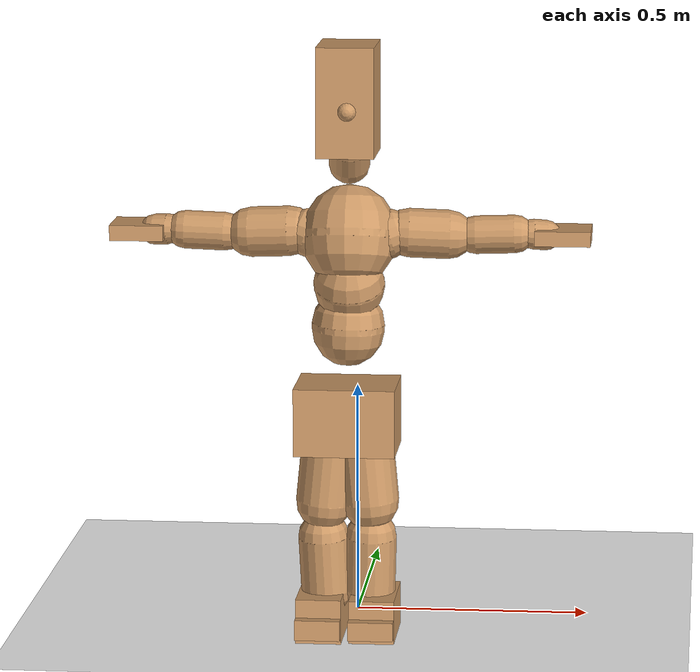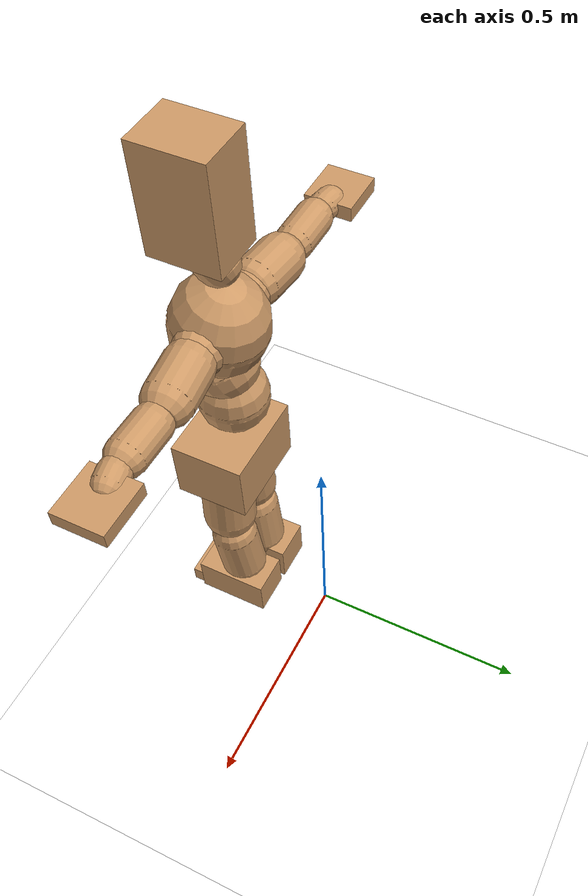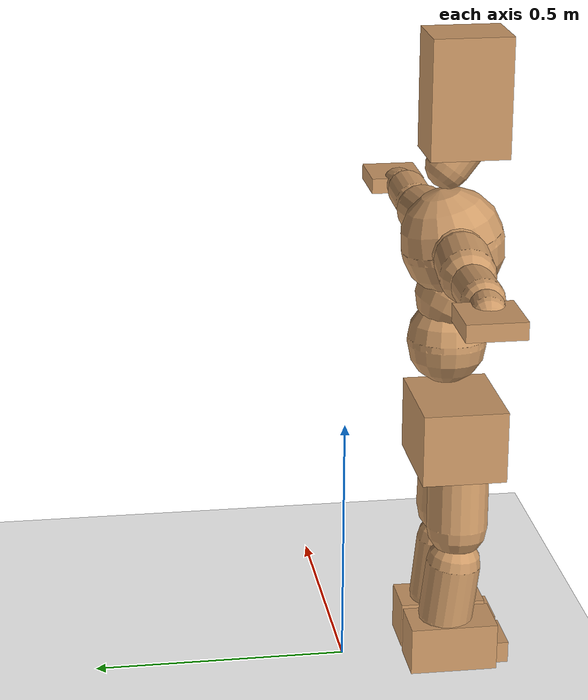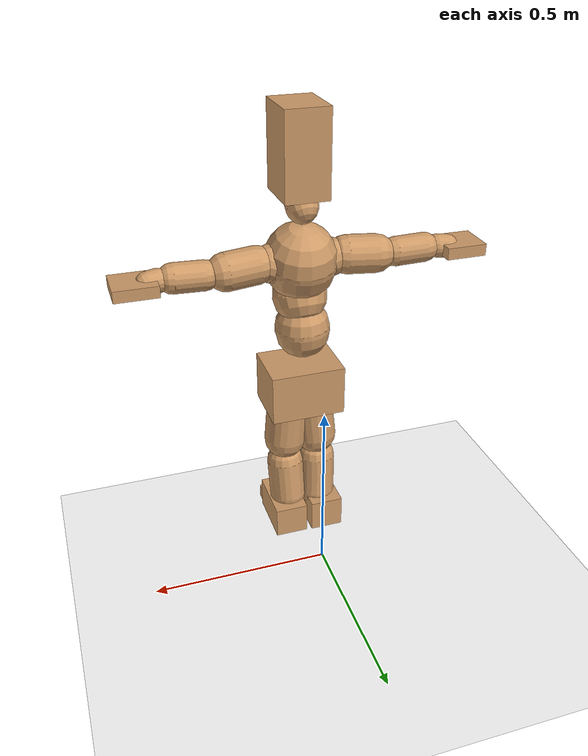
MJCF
<mujoco model="humanoid">
  <option integrator="implicitfast" />

  <visual>
    <global offwidth="1280" offheight="960" />
    <headlight active="1" ambient="0.34 0.34 0.34" diffuse="0.5 0.5 0.5" />
  </visual>

  <default>
    <joint damping="2" stiffness="2" armature="0.01" limited="true" solimplimit="0 .99 .01" />
    <geom condim="1" friction="0.7 0.005 0.0001" solimp=".99 .99 .003" solref="0.015 1" margin="0.001" rgba="0.8 0.6 .4 1" />
    <default class="smplcontact">
      <geom condim="3" friction="1. 0.005 0.0001" solref="0.015 1" solimp="0.98 0.98 0.001" priority="1" />
    </default>
    <default class="stiff_medium">
      <joint stiffness="10" />
    </default>
    <default class="stiff_medium_higher">
      <joint stiffness="50" />
    </default>
    <default class="stiff_high">
      <joint stiffness="100" />
    </default>
  </default>

  <asset>
    <texture type="skybox" builtin="gradient" rgb1="0.99 0.99 0.99" rgb2="0.608 0.828 0.892" width="100" />
    <texture builtin="flat" height="1278" mark="cross" markrgb="1 1 1" name="texgeom" random="0.01" rgb1="0.8 0.6 0.4" rgb2="0.8 0.6 0.4" type="cube" width="127" />
    <texture name="texplane" type="2d" builtin="checker" markrgb="1 1 1" rgb1="0.756 0.772 0.76" rgb2="0.6 0.6 0.6" width="100" height="100" />
    <material name="MatPlane" reflectance="0.5" texture="texplane" texrepeat="1 1" texuniform="true" />
    <material name="geom" texture="texgeom" texuniform="true" />
  </asset>

  <worldbody>
    <light name="tracking_light" pos="0 0 7" dir="0 0 -1" directional="true" cutoff="100" exponent="1" diffuse="1 1 1" specular="0.1 0.1 0.1" mode="trackcom" />
    <camera name="back" pos="0 3 2.4" xyaxes="-1 0 0 0 -1 2" mode="trackcom" />
    <camera name="side" pos="-3 0 2.4" xyaxes="0 -1 0 1 0 2" mode="trackcom" />
    <camera name="front_side" pos="-2.8 -2.8 0.8" xyaxes="0.5 -0.5 0 0.1 0.1 1" mode="trackcom" />
    <geom condim="3" name="floor" pos="0 0 0" rgba="1 1 1 1" size="100 100 .2" type="plane" material="MatPlane" />
    <body name="Pelvis" pos="-0.0018 -0.2233 0.49225" euler="90 0 0">
      <site name="Pelvis" size="0.01" />
      <freejoint name="Pelvis" />
      <geom type="box" pos="-0.0000 -0.0121 -0.0055" size="0.1069 0.0722 0.083" quat="1.0000 0.0000 0.0000 0.0000" density="3165.830099" name="Pelvis" />
      <body name="L_Hip" pos="0.03475 -0.0457 -0.0034">
        <joint name="L_Hip_x" type="hinge" pos="0 0 0" axis="1 0 0" stiffness="3.3281267346938783" range="-160.0 22.92" class="stiff_medium" damping="3.7390012674465325" armature="0.001866933509102771"/>
        <joint name="L_Hip_y" type="hinge" pos="0 0 0" axis="0 1 0" stiffness="3.37791" range="-70.0 70.0" class="stiff_medium" damping="4.005630916019097" armature="0.004750001934737158"/>
        <joint name="L_Hip_z" type="hinge" pos="0 0 0" axis="0 0 1" stiffness="3.3736477551020405" range="-28.65 90.0" class="stiff_medium" damping="2.5063841398267126" armature="0.0018620679787552054"/>
        <geom type="capsule" density="2040.816327" fromto="0.00345 -0.0375 -0.00045 0.0137 -0.1501 -0.0018" size="0.0615" name="L_Hip" />
        <body name="L_Knee" pos="0.01715 -0.1876 -0.00225">
          <joint name="L_Knee_x" type="hinge" pos="0 0 0" axis="1 0 0" range="-5.16 171.89" damping="2.2341138163124685" armature="0.0021582150618351214" stiffness="0.7227130408163265"/>
          <joint name="L_Knee_y" type="hinge" pos="0 0 0" axis="0 1 0" range="-4.58 6.88" damping="3.459125898584501" armature="0.005422024016158547" stiffness="0.6896382205818496"/>
          <joint name="L_Knee_z" type="hinge" pos="0 0 0" axis="0 0 1" range="-6.88 4.58" damping="2.2483389527020115" armature="0.002131189565119333" stiffness="0.7412274770408163"/>
          <geom type="capsule" density="1234.567901" fromto="-0.00135 -0.0398 -0.00435 -0.00545 -0.1592 -0.0175" size="0.0541" name="L_Knee" />
          <body name="L_Ankle" pos="-0.0068 -0.199 -0.02185">
            <joint name="L_Ankle_x" type="hinge" pos="0 0 0" axis="1 0 0" range="-45.84 45.84" class="stiff_medium" damping="3.0200432285450702" armature="0.005067033945711627" stiffness="5.0"/>
            <joint name="L_Ankle_y" type="hinge" pos="0 0 0" axis="0 1 0" range="-74.48 22.92" class="stiff_medium" damping="1.5371232923821343" armature="0.005250551146630428" stiffness="5.0"/>
            <joint name="L_Ankle_z" type="hinge" pos="0 0 0" axis="0 0 1" range="-4.58 4.58" class="stiff_medium" damping="3.407863702828061" armature="0.006451963898362769" stiffness="5.0"/>
            <geom type="box" pos="0.01165 -0.01195 0.0121" size="0.0483 0.0464 0.085" quat="1.0000 0.0000 0.0000 0.0000" density="449.071558" name="L_Ankle" class="smplcontact" />
            <body name="L_Toe" pos="0.0132 -0.0279 0.05965">
              <joint name="L_Toe_x" type="hinge" pos="0 0 0" axis="1 0 0" range="-91.67 22.92" armature="0.007148590664291485" damping="1.1957082139294257" stiffness="1.0"/>
              <joint name="L_Toe_y" type="hinge" pos="0 0 0" axis="0 1 0" range="-4.58 4.58" armature="0.007990951927082678" damping="1.2641955487251706" stiffness="1.0"/>
              <joint name="L_Toe_z" type="hinge" pos="0 0 0" axis="0 0 1" range="-4.58 4.58" armature="0.009694161060559443" damping="1.3924195531921721" stiffness="1.0"/>
              <geom type="box" pos="-0.0015 0.00275 0.0124" size="0.0478 0.02 0.0496" quat="1.0000 0.0000 0.0000 0.0000" density="423.206892" name="L_Toe" class="smplcontact" />
            </body>
          </body>
        </body>
      </body>
      <body name="R_Hip" pos="-0.03385 -0.04525 -0.00215">
        <joint name="R_Hip_x" type="hinge" pos="0 0 0" axis="1 0 0" stiffness="3.3281267346938783" range="-160.0 22.92" class="stiff_medium" damping="3.7390012674465325" armature="0.001866933509102771"/>
        <joint name="R_Hip_y" type="hinge" pos="0 0 0" axis="0 1 0" stiffness="3.37791" range="-70.0 70.0" class="stiff_medium" damping="4.005630916019097" armature="0.004750001934737158"/>
        <joint name="R_Hip_z" type="hinge" pos="0 0 0" axis="0 0 1" stiffness="3.3736477551020405" range="-90.0 28.65" class="stiff_medium" damping="2.5063841398267126" armature="0.0018620679787552054"/>
        <geom type="capsule" density="2040.816327" fromto="-0.00385 -0.03825 -0.0009 -0.0153 -0.15305 -0.00355" size="0.0606" name="R_Hip" />
        <body name="R_Knee" pos="-0.01915 -0.1913 -0.00445">
          <joint name="R_Knee_x" type="hinge" pos="0 0 0" axis="1 0 0" range="-5.16 171.89" damping="2.2341138163124685" armature="0.0021582150618351214" stiffness="0.7227130408163265"/>
          <joint name="R_Knee_y" type="hinge" pos="0 0 0" axis="0 1 0" range="-6.88 4.58" damping="3.459125898584501" armature="0.005422024016158547" stiffness="0.6896382205818496"/>
          <joint name="R_Knee_z" type="hinge" pos="0 0 0" axis="0 0 1" range="-4.58 6.88" damping="2.2483389527020115" armature="0.002131189565119333" stiffness="0.7412274770408163"/>
          <geom type="capsule" density="1234.567901" fromto="0.0016 -0.03985 -0.00425 0.0063 -0.15935 -0.0169" size="0.0541" name="R_Knee" />
          <body name="R_Ankle" pos="0.0079 -0.1992 -0.02115">
            <joint name="R_Ankle_x" type="hinge" pos="0 0 0" axis="1 0 0" range="-45.84 45.84" class="stiff_medium" damping="3.0200432285450702" armature="0.005067033945711627" stiffness="5.0"/>
            <joint name="R_Ankle_y" type="hinge" pos="0 0 0" axis="0 1 0" range="-22.92 74.48" class="stiff_medium" damping="1.5371232923821343" armature="0.005250551146630428" stiffness="5.0"/>
            <joint name="R_Ankle_z" type="hinge" pos="0 0 0" axis="0 0 1" range="-4.58 4.58" class="stiff_medium" damping="3.407863702828061" armature="0.006451963898362769" stiffness="5.0"/>
            <geom type="box" pos="-0.0106 -0.0087 0.0128" size="0.0483 0.0478 0.0865" quat="1.0000 0.0000 0.0000 0.0000" density="434.700981" name="R_Ankle" class="smplcontact" />
            <body name="R_Toe" pos="-0.0127 -0.02405 0.06165">
              <joint name="R_Toe_x" type="hinge" pos="0 0 0" axis="1 0 0" range="-91.67 22.92" armature="0.007148590664291485" damping="1.1957082139294257" stiffness="1.0"/>
              <joint name="R_Toe_y" type="hinge" pos="0 0 0" axis="0 1 0" range="-4.58 4.58" armature="0.007990951927082678" damping="1.2641955487251706" stiffness="1.0"/>
              <joint name="R_Toe_z" type="hinge" pos="0 0 0" axis="0 0 1" range="-4.58 4.58" armature="0.009694161060559443" damping="1.3924195531921721" stiffness="1.0"/>
              <geom type="box" pos="0.0021 0.00225 0.01135" size="0.0479 0.0216 0.0493" quat="1.0000 0.0000 0.0000 0.0000" density="407.384095" name="R_Toe" class="smplcontact" />
            </body>
          </body>
        </body>
      </body>
      <body name="Torso" pos="-0.0025 0.109 -0.0267">
        <joint name="Torso_x" type="hinge" pos="0 0 0" axis="1 0 0" range="-25.78 57.3" class="stiff_medium" damping="12.833128643120645" armature="0.00838986775572671" stiffness="8.724237142857143"/>
        <joint name="Torso_y" type="hinge" pos="0 0 0" axis="0 1 0" range="-57.3 57.3" class="stiff_high" damping="9.641007877053582" armature="0.0026152511802961754" stiffness="88.85287346938776"/>
        <joint name="Torso_z" type="hinge" pos="0 0 0" axis="0 0 1" range="-34.38 34.38" class="stiff_high" damping="15.256621848072815" armature="0.006404603814601965" stiffness="90.85827826086955"/>
        <geom type="capsule" density="2040.816327" fromto="0.0025 0.0608 0.0005 0.003 0.0743 0.0006" size="0.0769" name="Torso" />
        <body name="Spine" pos="0.0055 0.1352 0.0011">
          <joint name="Spine_x" type="hinge" pos="0 0 0" axis="1 0 0" stiffness="8.524132708333333" range="-25.78 57.3" class="stiff_medium" damping="12.593328186154581" armature="0.008268911088118527"/>
          <joint name="Spine_y" type="hinge" pos="0 0 0" axis="0 1 0" stiffness="8.372724772727274" range="-57.3 57.3" class="stiff_high" damping="3.70583596472787" armature="0.0025628641978587448"/>
          <joint name="Spine_z" type="hinge" pos="0 0 0" axis="0 0 1" stiffness="17.091765581395343" range="-34.38 34.38" class="stiff_high" damping="7.912330782724084" armature="0.0050873245655035084"/>
          <geom type="capsule" density="2040.816327" fromto="0.0007 0.0238 0.0114 0.0008 0.0291 0.014" size="0.0755" name="Spine" />
          <body name="Chest" pos="0.0015 0.0529 0.0254">
            <joint name="Chest_x" type="hinge" pos="0 0 0" axis="1 0 0" stiffness="8.200278372093024" range="-25.78 57.3" class="stiff_medium" damping="12.319816615498862" armature="0.008226164178146733"/>
            <joint name="Chest_y" type="hinge" pos="0 0 0" axis="0 1 0" stiffness="6.66116392857143" range="-57.3 57.3" class="stiff_high" damping="3.2862373670032503" armature="0.0025331899922285133"/>
            <joint name="Chest_z" type="hinge" pos="0 0 0" axis="0 0 1" stiffness="16.64932651162791" range="-34.38 34.38" class="stiff_high" damping="7.36051426253279" armature="0.004519466278837102"/>
            <geom type="capsule" density="2040.816327" fromto="-0.0009 0.0682 -0.0173 -0.001 0.0833 -0.0212" size="0.1002" name="Chest" />
            <body name="Neck" pos="-0.0028 0.2139 -0.0429">
              <joint name="Neck_x" type="hinge" pos="0 0 0" axis="1 0 0" range="-28.65 57.3" class="stiff_medium_higher" damping="10.00000000000001" armature="0.010000000000000024" stiffness="50.0"/>
              <joint name="Neck_y" type="hinge" pos="0 0 0" axis="0 1 0" range="-40.11 40.11" class="stiff_medium_higher" damping="10.0" armature="0.010000000000000002" stiffness="50.0"/>
              <joint name="Neck_z" type="hinge" pos="0 0 0" axis="0 0 1" range="-40.11 40.11" class="stiff_medium_higher" damping="10.000000000000009" armature="0.010000000000000018" stiffness="50.0"/>
              <geom type="capsule" density="1000" fromto="0.001 0.013 0.0103 0.0041 0.052 0.0411" size="0.0436" name="Neck" />
              <body name="Head" pos="0.0052 0.065 0.0513">
                <joint name="Head_x" type="hinge" pos="0 0 0" axis="1 0 0" range="-28.65 57.3" class="stiff_medium_higher" damping="2.0000000000000004" armature="0.010000000000000005" stiffness="50.0"/>
                <joint name="Head_y" type="hinge" pos="0 0 0" axis="0 1 0" range="-40.11 40.11" class="stiff_medium_higher" damping="2.0" armature="0.01" stiffness="50.0"/>
                <joint name="Head_z" type="hinge" pos="0 0 0" axis="0 0 1" range="-40.11 40.11" class="stiff_medium_higher" damping="2.0000000000000013" armature="0.010000000000000014" stiffness="50.0"/>
                <geom type="box" pos="-0.0042 0.0876 -0.0116" size="0.0606 0.1154 0.076" quat="1.0000 0.0000 0.0000 0.0000" density="1018.069894" name="Head" />
                <geom type="capsule" name="nose" size="0.02 0.01" pos="0 0.07 0.05" quat="1 0 0 0" mass="0" contype="0" conaffinity="0" />
              </body>
            </body>
            <body name="L_Thorax" pos="0.04334 0.066935 -0.018755">
              <joint name="L_Thorax_x" type="hinge" pos="0 0 0" axis="1 0 0" range="-10.89 4.58" class="stiff_medium_higher" damping="8.434703621562797" armature="0.004456108006307129" stiffness="19.956940306122444"/>
              <joint name="L_Thorax_y" type="hinge" pos="0 0 0" axis="0 1 0" range="-28.65 17.19" class="stiff_medium_higher" damping="6.022763730189365" armature="0.002308462047497596" stiffness="19.641693367346935"/>
              <joint name="L_Thorax_z" type="hinge" pos="0 0 0" axis="0 0 1" range="-31.51 40.11" class="stiff_medium_higher" damping="6.0206596523268665" armature="0.0023064402545495094" stiffness="19.64517755102041"/>
              <geom type="capsule" density="1000" fromto="0.01001 0.003355 -0.00099 0.04004 0.01342 -0.003905" size="0.0521" name="L_Thorax" />
              <body name="L_Shoulder" pos="0.05005 0.016775 -0.004895">
                <joint name="L_Shoulder_x" type="hinge" pos="0 0 0" axis="1 0 0" range="-97.4 97.4" class="stiff_medium" damping="2.750732619270355" armature="0.005207580254125619" stiffness="4.036066215805471"/>
                <joint name="L_Shoulder_y" type="hinge" pos="0 0 0" axis="0 1 0" range="-108.86 80.21" class="stiff_medium" damping="1.8298767221096353" armature="0.00235368225666454" stiffness="3.9517852040816326"/>
                <joint name="L_Shoulder_z" type="hinge" pos="0 0 0" axis="0 0 1" range="-97.4 85.94" class="stiff_medium" damping="1.829909535734246" armature="0.0023507489222583896" stiffness="3.9568582653061224"/>
                <geom type="capsule" density="1000" fromto="0.028545 -0.00143 -0.003025 0.114235 -0.00561 -0.0121" size="0.0517" name="L_Shoulder" />
                <body name="L_Elbow" pos="0.14278 -0.00704 -0.015125">
                  <joint name="L_Elbow_x" type="hinge" pos="0 0 0" axis="1 0 0" range="-17.19 4.58" damping="2.6383809861162364" armature="0.006602890217626976" stiffness="0.8433948163265306"/>
                  <joint name="L_Elbow_y" type="hinge" pos="0 0 0" axis="0 1 0" range="-180.0 17.19" damping="1.6493311800762023" armature="0.0025828362461048147" stiffness="0.842575551020408"/>
                  <joint name="L_Elbow_z" type="hinge" pos="0 0 0" axis="0 0 1" range="-100.84 4.58" damping="1.64576925371441" armature="0.0025674453810837095" stiffness="0.8439693265306122"/>
                  <geom type="capsule" density="1000" fromto="0.02739 0.00099 -0.00011 0.10967 0.00396 -0.000495" size="0.0405" name="L_Elbow" />
                  <body name="L_Wrist" pos="0.13706 0.00495 -0.00066">
                    <joint name="L_Wrist_x" type="hinge" pos="0 0 0" axis="1 0 0" range="-180.0 22.92" armature="0.007461834395238791" damping="1.2279494204587413" stiffness="1.0103814285714288"/>
                    <joint name="L_Wrist_y" type="hinge" pos="0 0 0" axis="0 1 0" range="-17.19 17.19" armature="0.0036649156166127495" damping="0.8549575346764102" stiffness="0.9972294897959184"/>
                    <joint name="L_Wrist_z" type="hinge" pos="0 0 0" axis="0 0 1" range="-22.92 22.92" armature="0.0034414222692761517" damping="0.830679708046743" stiffness="1.002534306122449"/>
                    <geom type="capsule" density="1000" fromto="0.00924 -0.00088 -0.00165 0.03696 -0.003575 -0.0066" size="0.0318" name="L_Wrist" class="smplcontact" />
                    <body name="L_Hand" pos="0.0462 -0.00451 -0.008195">
                      <joint name="L_Hand_x" type="hinge" pos="0 0 0" axis="1 0 0" range="-17.19 17.19" armature="0.009696126030368795" damping="1.4605299472044846" stiffness="1.0999999999999999"/>
                      <joint name="L_Hand_y" type="hinge" pos="0 0 0" axis="0 1 0" range="-51.57 51.57" armature="0.006325063576496694" damping="1.1796245109479848" stiffness="1.0999999999999999"/>
                      <joint name="L_Hand_z" type="hinge" pos="0 0 0" axis="0 0 1" range="-91.67 91.67" armature="0.0054264608203164946" damping="1.092621334438253" stiffness="1.0999999999999999"/>
                      <geom type="box" pos="0.027115 0.00055 -0.00319" size="0.0585 0.0158 0.0538" quat="1.0000 0.0000 0.0000 0.0000" density="400.552564" name="L_Hand" class="smplcontact" />
                    </body>
                  </body>
                </body>
              </body>
            </body>
            <body name="R_Thorax" pos="-0.04499 0.06534 -0.02123">
              <joint name="R_Thorax_x" type="hinge" pos="0 0 0" axis="1 0 0" range="-10.89 4.58" class="stiff_medium_higher" damping="8.434703621562797" armature="0.004456108006307129" stiffness="19.956940306122444"/>
              <joint name="R_Thorax_y" type="hinge" pos="0 0 0" axis="0 1 0" range="-17.19 28.65" class="stiff_medium_higher" damping="6.022763730189365" armature="0.002308462047497596" stiffness="19.641693367346935"/>
              <joint name="R_Thorax_z" type="hinge" pos="0 0 0" axis="0 0 1" range="-40.11 31.51" class="stiff_medium_higher" damping="6.0206596523268665" armature="0.0023064402545495094" stiffness="19.64517755102041"/>
              <geom type="capsule" density="1000" fromto="-0.01056 0.003575 -0.00099 -0.04224 0.0143 -0.004015" size="0.0511" name="R_Thorax" />
              <body name="R_Shoulder" pos="-0.0528 0.01793 -0.005005">
                <joint name="R_Shoulder_x" type="hinge" pos="0 0 0" axis="1 0 0" range="-97.4 97.4" class="stiff_medium" damping="2.750732619270355" armature="0.005207580254125619" stiffness="4.036066215805471"/>
                <joint name="R_Shoulder_y" type="hinge" pos="0 0 0" axis="0 1 0" range="-80.21 108.86" class="stiff_medium" damping="1.8298767221096353" armature="0.00235368225666454" stiffness="3.9517852040816326"/>
                <joint name="R_Shoulder_z" type="hinge" pos="0 0 0" axis="0 0 1" range="-85.94 97.4" class="stiff_medium" damping="1.829909535734246" armature="0.0023507489222583896" stiffness="3.9568582653061224"/>
                <geom type="capsule" density="1000" fromto="-0.027885 -0.001485 -0.002365 -0.11165 -0.005885 -0.009405" size="0.0531" name="R_Shoulder" />
                <body name="R_Elbow" pos="-0.139535 -0.007315 -0.01177">
                  <joint name="R_Elbow_x" type="hinge" pos="0 0 0" axis="1 0 0" range="-17.19 4.58" damping="2.6383809861162364" armature="0.006602890217626976" stiffness="0.8433948163265306"/>
                  <joint name="R_Elbow_y" type="hinge" pos="0 0 0" axis="0 1 0" range="-17.19 180.0" damping="1.6493311800762023" armature="0.0025828362461048147" stiffness="0.842575551020408"/>
                  <joint name="R_Elbow_z" type="hinge" pos="0 0 0" axis="0 0 1" range="-4.58 100.84" damping="1.64576925371441" armature="0.0025674453810837095" stiffness="0.8439693265306122"/>
                  <geom type="capsule" density="1000" fromto="-0.028105 0.00088 -0.000605 -0.11231 0.00341 -0.00242" size="0.0408" name="R_Elbow" />
                  <body name="R_Wrist" pos="-0.140415 0.00429 -0.00308">
                    <joint name="R_Wrist_x" type="hinge" pos="0 0 0" axis="1 0 0" range="-180.0 22.92" armature="0.007461834395238791" damping="1.2279494204587413" stiffness="1.0103814285714288"/>
                    <joint name="R_Wrist_y" type="hinge" pos="0 0 0" axis="0 1 0" range="-17.19 17.19" armature="0.0036649156166127495" damping="0.8549575346764102" stiffness="0.9972294897959184"/>
                    <joint name="R_Wrist_z" type="hinge" pos="0 0 0" axis="0 0 1" range="-22.92 22.92" armature="0.0034414222692761517" damping="0.830679708046743" stiffness="1.002534306122449"/>
                    <geom type="capsule" density="1000" fromto="-0.009295 -0.00066 -0.001155 -0.037235 -0.002695 -0.004565" size="0.0326" name="R_Wrist" class="smplcontact" />
                    <body name="R_Hand" pos="-0.04653 -0.003355 -0.005665">
                      <joint name="R_Hand_x" type="hinge" pos="0 0 0" axis="1 0 0" range="-17.19 17.19" armature="0.009696126030368795" damping="1.4605299472044846" stiffness="1.0999999999999999"/>
                      <joint name="R_Hand_y" type="hinge" pos="0 0 0" axis="0 1 0" range="-51.57 51.57" armature="0.006325063576496694" damping="1.1796245109479848" stiffness="1.0999999999999999"/>
                      <joint name="R_Hand_z" type="hinge" pos="0 0 0" axis="0 0 1" range="-91.67 91.67" armature="0.0054264608203164946" damping="1.092621334438253" stiffness="1.0999999999999999"/>
                      <geom type="box" pos="-0.02541 -0.000495 -0.004345" size="0.0569 0.0164 0.0546" quat="1.0000 0.0000 0.0000 0.0000" density="403.679611" name="R_Hand" class="smplcontact" />
                    </body>
                  </body>
                </body>
              </body>
            </body>
          </body>
        </body>
      </body>
    </body>
  </worldbody>
  <actuator>
    <general name="L_Hip_x" joint="L_Hip_x" biastype="affine" gainprm="95.62708680036044" biasprm="-71.66280919852072 -59.9062812244898 -0.4985335023262043" ctrllimited="true" ctrlrange="-1 1" forcerange="-119.8125624489796 119.8125624489796" />
    <general name="L_Hip_y" joint="L_Hip_y" biastype="affine" gainprm="74.28412068341248" biasprm="0.0 -60.80238 -0.8011261832038195" ctrllimited="true" ctrlrange="-1 1" forcerange="-121.60476 121.60476" />
    <general name="L_Hip_z" joint="L_Hip_z" biastype="affine" gainprm="62.8763546966517" biasprm="32.51128833240271 -60.72565959183673 -0.5012768279653426" ctrllimited="true" ctrlrange="-1 1" forcerange="-121.45131918367346 121.45131918367346" />
    <general name="L_Knee_x" joint="L_Knee_x" biastype="affine" gainprm="100.49667747567948" biasprm="94.63886492809961 -65.04417367346939 -0.5585284540781171" ctrllimited="true" ctrlrange="-1 1" forcerange="-130.08834734693878 130.08834734693878" />
    <general name="L_Knee_y" joint="L_Knee_y" biastype="affine" gainprm="6.207201182643047" biasprm="1.2457733612634387 -62.06743985236647 -0.8647814746461252" ctrllimited="true" ctrlrange="-1 1" forcerange="-124.13487970473294 124.13487970473294" />
    <general name="L_Knee_z" joint="L_Knee_z" biastype="affine" gainprm="6.671538692002082" biasprm="-1.3389650079934372 -66.71047293367346 -0.5620847381755029" ctrllimited="true" ctrlrange="-1 1" forcerange="-133.42094586734692 133.42094586734692" />
    <general name="L_Ankle_x" joint="L_Ankle_x" biastype="affine" gainprm="36.002651810139035" biasprm="0.0 -45.0 -1.00668107618169" ctrllimited="true" ctrlrange="-1 1" forcerange="-90.0 90.0" />
    <general name="L_Ankle_y" joint="L_Ankle_y" biastype="affine" gainprm="38.24889055745574" biasprm="-20.24756465238622 -45.0 -1.0247488615880895" ctrllimited="true" ctrlrange="-1 1" forcerange="-90.0 90.0" />
    <general name="L_Ankle_z" joint="L_Ankle_z" biastype="affine" gainprm="3.5971235883603128" biasprm="0.0 -45.0 -1.1359545676093536" ctrllimited="true" ctrlrange="-1 1" forcerange="-90.0 90.0" />
    <general name="L_Toe_x" joint="L_Toe_x" biastype="affine" gainprm="35.99951021748544" biasprm="-21.598449493429825 -36.0 -0.4782832855717703" ctrllimited="true" ctrlrange="-1 1" forcerange="-72.0 72.0" />
    <general name="L_Toe_y" joint="L_Toe_y" biastype="affine" gainprm="2.8776988706882505" biasprm="0.0 -36.0 -0.5056782194900683" ctrllimited="true" ctrlrange="-1 1" forcerange="-72.0 72.0" />
    <general name="L_Toe_z" joint="L_Toe_z" biastype="affine" gainprm="2.8776988706882505" biasprm="0.0 -36.0 -0.5569678212768688" ctrllimited="true" ctrlrange="-1 1" forcerange="-72.0 72.0" />
    <general name="R_Hip_x" joint="R_Hip_x" biastype="affine" gainprm="95.62708680036044" biasprm="-71.66280919852072 -59.9062812244898 -0.4985335023262043" ctrllimited="true" ctrlrange="-1 1" forcerange="-119.8125624489796 119.8125624489796" />
    <general name="R_Hip_y" joint="R_Hip_y" biastype="affine" gainprm="74.28412068341248" biasprm="0.0 -60.80238 -0.8011261832038195" ctrllimited="true" ctrlrange="-1 1" forcerange="-121.60476 121.60476" />
    <general name="R_Hip_z" joint="R_Hip_z" biastype="affine" gainprm="62.8763546966517" biasprm="-32.51128833240271 -60.72565959183673 -0.5012768279653426" ctrllimited="true" ctrlrange="-1 1" forcerange="-121.45131918367346 121.45131918367346" />
    <general name="R_Knee_x" joint="R_Knee_x" biastype="affine" gainprm="100.49667747567948" biasprm="94.63886492809961 -65.04417367346939 -0.5585284540781171" ctrllimited="true" ctrlrange="-1 1" forcerange="-130.08834734693878 130.08834734693878" />
    <general name="R_Knee_y" joint="R_Knee_y" biastype="affine" gainprm="6.207201182643047" biasprm="-1.2457733612634387 -62.06743985236647 -0.8647814746461252" ctrllimited="true" ctrlrange="-1 1" forcerange="-124.13487970473294 124.13487970473294" />
    <general name="R_Knee_z" joint="R_Knee_z" biastype="affine" gainprm="6.671538692002082" biasprm="1.3389650079934372 -66.71047293367346 -0.5620847381755029" ctrllimited="true" ctrlrange="-1 1" forcerange="-133.42094586734692 133.42094586734692" />
    <general name="R_Ankle_x" joint="R_Ankle_x" biastype="affine" gainprm="36.002651810139035" biasprm="0.0 -45.0 -1.00668107618169" ctrllimited="true" ctrlrange="-1 1" forcerange="-90.0 90.0" />
    <general name="R_Ankle_y" joint="R_Ankle_y" biastype="affine" gainprm="38.24889055745574" biasprm="20.24756465238622 -45.0 -1.0247488615880895" ctrllimited="true" ctrlrange="-1 1" forcerange="-90.0 90.0" />
    <general name="R_Ankle_z" joint="R_Ankle_z" biastype="affine" gainprm="3.5971235883603128" biasprm="0.0 -45.0 -1.1359545676093536" ctrllimited="true" ctrlrange="-1 1" forcerange="-90.0 90.0" />
    <general name="R_Toe_x" joint="R_Toe_x" biastype="affine" gainprm="35.99951021748544" biasprm="-21.598449493429825 -36.0 -0.4782832855717703" ctrllimited="true" ctrlrange="-1 1" forcerange="-72.0 72.0" />
    <general name="R_Toe_y" joint="R_Toe_y" biastype="affine" gainprm="2.8776988706882505" biasprm="0.0 -36.0 -0.5056782194900683" ctrllimited="true" ctrlrange="-1 1" forcerange="-72.0 72.0" />
    <general name="R_Toe_z" joint="R_Toe_z" biastype="affine" gainprm="2.8776988706882505" biasprm="0.0 -36.0 -0.5569678212768688" ctrllimited="true" ctrlrange="-1 1" forcerange="-72.0 72.0" />
    <general name="Torso_x" joint="Torso_x" biastype="affine" gainprm="151.80377221252243" biasprm="57.593342563056154 -209.38169142857143 -3.4221676381655053" ctrllimited="true" ctrlrange="-1 1" forcerange="-314.07253714285713 314.07253714285713" />
    <general name="Torso_y" joint="Torso_y" biastype="affine" gainprm="213.26260438991383" biasprm="0.0 -213.24689632653062 -1.9282015754107165" ctrllimited="true" ctrlrange="-1 1" forcerange="-319.8703444897959 319.8703444897959" />
    <general name="Torso_z" joint="Torso_z" biastype="affine" gainprm="130.84555825179245" biasprm="0.0 -218.05986782608693 -3.051324369614563" ctrllimited="true" ctrlrange="-1 1" forcerange="-327.0898017391304 327.0898017391304" />
    <general name="Spine_x" joint="Spine_x" biastype="affine" gainprm="148.32190812518058" biasprm="56.272346462514335 -204.579185 -3.3582208496412216" ctrllimited="true" ctrlrange="-1 1" forcerange="-306.86877749999996 306.86877749999996" />
    <general name="Spine_y" joint="Spine_y" biastype="affine" gainprm="200.96019646308363" biasprm="0.0 -200.94539454545458 -1.852917982363935" ctrllimited="true" ctrlrange="-1 1" forcerange="-301.41809181818184 301.41809181818184" />
    <general name="Spine_z" joint="Spine_z" biastype="affine" gainprm="123.06977700949903" biasprm="0.0 -205.10118697674412 -2.637443594241361" ctrllimited="true" ctrlrange="-1 1" forcerange="-307.6517804651162 307.6517804651162" />
    <general name="Chest_x" joint="Chest_x" biastype="affine" gainprm="142.68676672729774" biasprm="54.13441125715483 -196.80668093023257 -3.2852844307996967" ctrllimited="true" ctrlrange="-1 1" forcerange="-295.21002139534886 295.21002139534886" />
    <general name="Chest_y" joint="Chest_y" biastype="affine" gainprm="159.87971038041" biasprm="0.0 -159.8679342857143 -1.6431186835016252" ctrllimited="true" ctrlrange="-1 1" forcerange="-239.80190142857145 239.80190142857145" />
    <general name="Chest_z" joint="Chest_z" biastype="affine" gainprm="119.88398105429127" biasprm="0.0 -199.7919181395349 -2.453504754177597" ctrllimited="true" ctrlrange="-1 1" forcerange="-299.68787720930237 299.68787720930237" />
    <general name="Neck_x" joint="Neck_x" biastype="affine" gainprm="27.00198885760427" biasprm="9.000662952534757 -36.0 -0.8000000000000009" ctrllimited="true" ctrlrange="-1 1" forcerange="-72.0 72.0" />
    <general name="Neck_y" joint="Neck_y" biastype="affine" gainprm="25.20185626709732" biasprm="0.0 -36.0 -0.8" ctrllimited="true" ctrlrange="-1 1" forcerange="-72.0 72.0" />
    <general name="Neck_z" joint="Neck_z" biastype="affine" gainprm="25.20185626709732" biasprm="0.0 -36.0 -0.8000000000000007" ctrllimited="true" ctrlrange="-1 1" forcerange="-72.0 72.0" />
    <general name="Head_x" joint="Head_x" biastype="affine" gainprm="18.001325905069514" biasprm="6.000441968356505 -24.0 -0.8000000000000003" ctrllimited="true" ctrlrange="-1 1" forcerange="-48.0 48.0" />
    <general name="Head_y" joint="Head_y" biastype="affine" gainprm="16.801237511398213" biasprm="0.0 -24.0 -0.8" ctrllimited="true" ctrlrange="-1 1" forcerange="-48.0 48.0" />
    <general name="Head_z" joint="Head_z" biastype="affine" gainprm="16.801237511398213" biasprm="0.0 -24.0 -0.8000000000000006" ctrllimited="true" ctrlrange="-1 1" forcerange="-48.0 48.0" />
    <general name="L_Thorax_x" joint="L_Thorax_x" biastype="affine" gainprm="6.466106980153143" biasprm="-2.6374360080650514 -47.89665673469387 -0.6747762897250237" ctrllimited="true" ctrlrange="-1 1" forcerange="-95.79331346938774 95.79331346938774" />
    <general name="L_Thorax_y" joint="L_Thorax_y" biastype="affine" gainprm="18.857414593762904" biasprm="-4.714353648440726 -47.140064081632644 -0.48182109841514925" ctrllimited="true" ctrlrange="-1 1" forcerange="-94.28012816326529 94.28012816326529" />
    <general name="L_Thorax_z" joint="L_Thorax_z" biastype="affine" gainprm="29.46787972505706" biasprm="3.538449673771163 -47.14842612244898 -0.4816527721861493" ctrllimited="true" ctrlrange="-1 1" forcerange="-94.29685224489796 94.29685224489796" />
    <general name="L_Shoulder_x" joint="L_Shoulder_x" biastype="affine" gainprm="32.93334506047744" biasprm="0.0 -19.373117835866264 -0.7335286984720948" ctrllimited="true" ctrlrange="-1 1" forcerange="-38.74623567173253 38.74623567173253" />
    <general name="L_Shoulder_y" joint="L_Shoulder_y" biastype="affine" gainprm="31.297133640991394" biasprm="-4.74249155770034 -18.968568979591836 -0.4879671258959028" ctrllimited="true" ctrlrange="-1 1" forcerange="-37.93713795918367 37.93713795918367" />
    <general name="L_Shoulder_z" joint="L_Shoulder_z" biastype="affine" gainprm="30.387595059587213" biasprm="-1.8994318718384982 -18.992919673469387 -0.487975876195799" ctrllimited="true" ctrlrange="-1 1" forcerange="-37.985839346938775 37.985839346938775" />
    <general name="L_Elbow_x" joint="L_Elbow_x" biastype="affine" gainprm="5.768185641845626" biasprm="-3.3411493313584466 -30.3622133877551 -0.4221409577785979" ctrllimited="true" ctrlrange="-1 1" forcerange="-60.7244267755102 60.7244267755102" />
    <general name="L_Elbow_y" joint="L_Elbow_y" biastype="affine" gainprm="52.19676802931011" biasprm="-43.09628177317298 -30.33271983673469 -0.26389298881219236" ctrllimited="true" ctrlrange="-1 1" forcerange="-60.66543967346938 60.66543967346938" />
    <general name="L_Elbow_z" joint="L_Elbow_z" biastype="affine" gainprm="27.951141407994328" biasprm="-25.522451830141666 -30.382895755102037 -0.2633230805943056" ctrllimited="true" ctrlrange="-1 1" forcerange="-60.765791510204075 60.765791510204075" />
    <general name="L_Wrist_x" joint="L_Wrist_x" biastype="affine" gainprm="10.735167645580283" biasprm="-8.310073594361082 -6.062288571428573 -0.49117976818349657" ctrllimited="true" ctrlrange="-1 1" forcerange="-12.124577142857145 12.124577142857145" />
    <general name="L_Wrist_y" joint="L_Wrist_y" biastype="affine" gainprm="1.7951453047962525" biasprm="0.0 -5.9833769387755105 -0.3419830138705641" ctrllimited="true" ctrlrange="-1 1" forcerange="-11.966753877551021 11.966753877551021" />
    <general name="L_Wrist_z" joint="L_Wrist_z" biastype="affine" gainprm="2.4062595700697247" biasprm="0.0 -6.015205836734694 -0.3322718832186972" ctrllimited="true" ctrlrange="-1 1" forcerange="-12.030411673469388 12.030411673469388" />
    <general name="L_Hand_x" joint="L_Hand_x" biastype="affine" gainprm="1.9801458495576467" biasprm="0.0 -6.6 -0.5842119788817939" ctrllimited="true" ctrlrange="-1 1" forcerange="-13.2 13.2" />
    <general name="L_Hand_y" joint="L_Hand_y" biastype="affine" gainprm="5.940437548672939" biasprm="0.0 -6.6 -0.47184980437919394" ctrllimited="true" ctrlrange="-1 1" forcerange="-13.2 13.2" />
    <general name="L_Hand_z" joint="L_Hand_z" biastype="affine" gainprm="10.55962594700113" biasprm="0.0 -6.6 -0.4370485337753012" ctrllimited="true" ctrlrange="-1 1" forcerange="-13.2 13.2" />
    <general name="R_Thorax_x" joint="R_Thorax_x" biastype="affine" gainprm="6.466106980153143" biasprm="-2.6374360080650514 -47.89665673469387 -0.6747762897250237" ctrllimited="true" ctrlrange="-1 1" forcerange="-95.79331346938774 95.79331346938774" />
    <general name="R_Thorax_y" joint="R_Thorax_y" biastype="affine" gainprm="18.857414593762904" biasprm="4.714353648440723 -47.140064081632644 -0.48182109841514925" ctrllimited="true" ctrlrange="-1 1" forcerange="-94.28012816326529 94.28012816326529" />
    <general name="R_Thorax_z" joint="R_Thorax_z" biastype="affine" gainprm="29.46787972505706" biasprm="-3.538449673771163 -47.14842612244898 -0.4816527721861493" ctrllimited="true" ctrlrange="-1 1" forcerange="-94.29685224489796 94.29685224489796" />
    <general name="R_Shoulder_x" joint="R_Shoulder_x" biastype="affine" gainprm="32.93334506047744" biasprm="0.0 -19.373117835866264 -0.7335286984720948" ctrllimited="true" ctrlrange="-1 1" forcerange="-38.74623567173253 38.74623567173253" />
    <general name="R_Shoulder_y" joint="R_Shoulder_y" biastype="affine" gainprm="31.297133640991394" biasprm="4.74249155770034 -18.968568979591836 -0.4879671258959028" ctrllimited="true" ctrlrange="-1 1" forcerange="-37.93713795918367 37.93713795918367" />
    <general name="R_Shoulder_z" joint="R_Shoulder_z" biastype="affine" gainprm="30.387595059587213" biasprm="1.899431871838494 -18.992919673469387 -0.487975876195799" ctrllimited="true" ctrlrange="-1 1" forcerange="-37.985839346938775 37.985839346938775" />
    <general name="R_Elbow_x" joint="R_Elbow_x" biastype="affine" gainprm="5.768185641845626" biasprm="-3.3411493313584466 -30.3622133877551 -0.4221409577785979" ctrllimited="true" ctrlrange="-1 1" forcerange="-60.7244267755102 60.7244267755102" />
    <general name="R_Elbow_y" joint="R_Elbow_y" biastype="affine" gainprm="52.19676802931011" biasprm="43.09628177317298 -30.33271983673469 -0.26389298881219236" ctrllimited="true" ctrlrange="-1 1" forcerange="-60.66543967346938 60.66543967346938" />
    <general name="R_Elbow_z" joint="R_Elbow_z" biastype="affine" gainprm="27.951141407994328" biasprm="25.522451830141662 -30.382895755102037 -0.2633230805943056" ctrllimited="true" ctrlrange="-1 1" forcerange="-60.765791510204075 60.765791510204075" />
    <general name="R_Wrist_x" joint="R_Wrist_x" biastype="affine" gainprm="10.735167645580283" biasprm="-8.310073594361082 -6.062288571428573 -0.49117976818349657" ctrllimited="true" ctrlrange="-1 1" forcerange="-12.124577142857145 12.124577142857145" />
    <general name="R_Wrist_y" joint="R_Wrist_y" biastype="affine" gainprm="1.7951453047962525" biasprm="0.0 -5.9833769387755105 -0.3419830138705641" ctrllimited="true" ctrlrange="-1 1" forcerange="-11.966753877551021 11.966753877551021" />
    <general name="R_Wrist_z" joint="R_Wrist_z" biastype="affine" gainprm="2.4062595700697247" biasprm="0.0 -6.015205836734694 -0.3322718832186972" ctrllimited="true" ctrlrange="-1 1" forcerange="-12.030411673469388 12.030411673469388" />
    <general name="R_Hand_x" joint="R_Hand_x" biastype="affine" gainprm="1.9801458495576467" biasprm="0.0 -6.6 -0.5842119788817939" ctrllimited="true" ctrlrange="-1 1" forcerange="-13.2 13.2" />
    <general name="R_Hand_y" joint="R_Hand_y" biastype="affine" gainprm="5.940437548672939" biasprm="0.0 -6.6 -0.47184980437919394" ctrllimited="true" ctrlrange="-1 1" forcerange="-13.2 13.2" />
    <general name="R_Hand_z" joint="R_Hand_z" biastype="affine" gainprm="10.55962594700113" biasprm="0.0 -6.6 -0.4370485337753012" ctrllimited="true" ctrlrange="-1 1" forcerange="-13.2 13.2" />
  </actuator>
  <contact>
    <exclude body1="Torso" body2="Chest" />
    <exclude body1="Head" body2="Chest" />
    <exclude body1="R_Knee" body2="R_Toe" />
    <exclude body1="R_Knee" body2="L_Ankle" />
    <exclude body1="R_Knee" body2="L_Toe" />
    <exclude body1="L_Knee" body2="L_Toe" />
    <exclude body1="L_Knee" body2="R_Ankle" />
    <exclude body1="L_Knee" body2="R_Toe" />
    <exclude body1="L_Shoulder" body2="Chest" />
    <exclude body1="R_Shoulder" body2="Chest" />
  </contact>
  <sensor>
    <framelinvel name="sensor_Pelvis_framelinvel" objtype="xbody" objname="Pelvis" />
    <framelinvel name="sensor_L_Hip_framelinvel" objtype="xbody" objname="L_Hip" />
    <framelinvel name="sensor_L_Knee_framelinvel" objtype="xbody" objname="L_Knee" />
    <framelinvel name="sensor_L_Ankle_framelinvel" objtype="xbody" objname="L_Ankle" />
    <framelinvel name="sensor_L_Toe_framelinvel" objtype="xbody" objname="L_Toe" />
    <framelinvel name="sensor_R_Hip_framelinvel" objtype="xbody" objname="R_Hip" />
    <framelinvel name="sensor_R_Knee_framelinvel" objtype="xbody" objname="R_Knee" />
    <framelinvel name="sensor_R_Ankle_framelinvel" objtype="xbody" objname="R_Ankle" />
    <framelinvel name="sensor_R_Toe_framelinvel" objtype="xbody" objname="R_Toe" />
    <framelinvel name="sensor_Torso_framelinvel" objtype="xbody" objname="Torso" />
    <framelinvel name="sensor_Spine_framelinvel" objtype="xbody" objname="Spine" />
    <framelinvel name="sensor_Chest_framelinvel" objtype="xbody" objname="Chest" />
    <framelinvel name="sensor_Neck_framelinvel" objtype="xbody" objname="Neck" />
    <framelinvel name="sensor_Head_framelinvel" objtype="xbody" objname="Head" />
    <framelinvel name="sensor_L_Thorax_framelinvel" objtype="xbody" objname="L_Thorax" />
    <framelinvel name="sensor_L_Shoulder_framelinvel" objtype="xbody" objname="L_Shoulder" />
    <framelinvel name="sensor_L_Elbow_framelinvel" objtype="xbody" objname="L_Elbow" />
    <framelinvel name="sensor_L_Wrist_framelinvel" objtype="xbody" objname="L_Wrist" />
    <framelinvel name="sensor_L_Hand_framelinvel" objtype="xbody" objname="L_Hand" />
    <framelinvel name="sensor_R_Thorax_framelinvel" objtype="xbody" objname="R_Thorax" />
    <framelinvel name="sensor_R_Shoulder_framelinvel" objtype="xbody" objname="R_Shoulder" />
    <framelinvel name="sensor_R_Elbow_framelinvel" objtype="xbody" objname="R_Elbow" />
    <framelinvel name="sensor_R_Wrist_framelinvel" objtype="xbody" objname="R_Wrist" />
    <framelinvel name="sensor_R_Hand_framelinvel" objtype="xbody" objname="R_Hand" />
    <frameangvel name="sensor_Pelvis_frameangvel" objtype="xbody" objname="Pelvis" />
    <frameangvel name="sensor_L_Hip_frameangvel" objtype="xbody" objname="L_Hip" />
    <frameangvel name="sensor_L_Knee_frameangvel" objtype="xbody" objname="L_Knee" />
    <frameangvel name="sensor_L_Ankle_frameangvel" objtype="xbody" objname="L_Ankle" />
    <frameangvel name="sensor_L_Toe_frameangvel" objtype="xbody" objname="L_Toe" />
    <frameangvel name="sensor_R_Hip_frameangvel" objtype="xbody" objname="R_Hip" />
    <frameangvel name="sensor_R_Knee_frameangvel" objtype="xbody" objname="R_Knee" />
    <frameangvel name="sensor_R_Ankle_frameangvel" objtype="xbody" objname="R_Ankle" />
    <frameangvel name="sensor_R_Toe_frameangvel" objtype="xbody" objname="R_Toe" />
    <frameangvel name="sensor_Torso_frameangvel" objtype="xbody" objname="Torso" />
    <frameangvel name="sensor_Spine_frameangvel" objtype="xbody" objname="Spine" />
    <frameangvel name="sensor_Chest_frameangvel" objtype="xbody" objname="Chest" />
    <frameangvel name="sensor_Neck_frameangvel" objtype="xbody" objname="Neck" />
    <frameangvel name="sensor_Head_frameangvel" objtype="xbody" objname="Head" />
    <frameangvel name="sensor_L_Thorax_frameangvel" objtype="xbody" objname="L_Thorax" />
    <frameangvel name="sensor_L_Shoulder_frameangvel" objtype="xbody" objname="L_Shoulder" />
    <frameangvel name="sensor_L_Elbow_frameangvel" objtype="xbody" objname="L_Elbow" />
    <frameangvel name="sensor_L_Wrist_frameangvel" objtype="xbody" objname="L_Wrist" />
    <frameangvel name="sensor_L_Hand_frameangvel" objtype="xbody" objname="L_Hand" />
    <frameangvel name="sensor_R_Thorax_frameangvel" objtype="xbody" objname="R_Thorax" />
    <frameangvel name="sensor_R_Shoulder_frameangvel" objtype="xbody" objname="R_Shoulder" />
    <frameangvel name="sensor_R_Elbow_frameangvel" objtype="xbody" objname="R_Elbow" />
    <frameangvel name="sensor_R_Wrist_frameangvel" objtype="xbody" objname="R_Wrist" />
    <frameangvel name="sensor_R_Hand_frameangvel" objtype="xbody" objname="R_Hand" />
    <subtreelinvel name="Chest_subtreelinvel" body="Chest" />
    <gyro name="Pelvis_gyro" site="Pelvis" />
  </sensor>
</mujoco>
